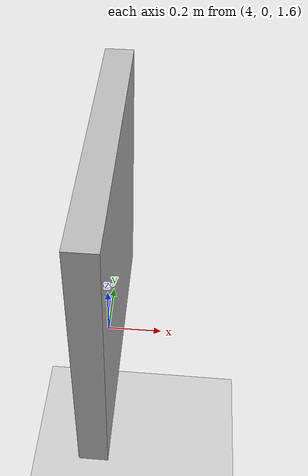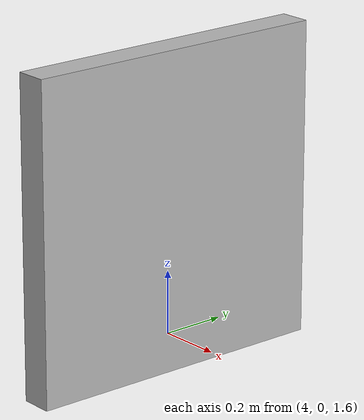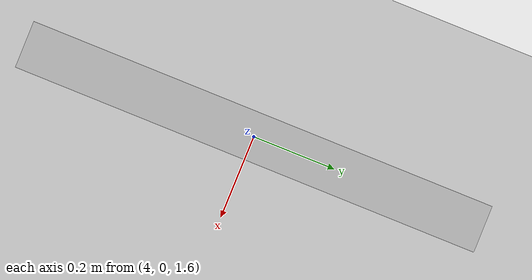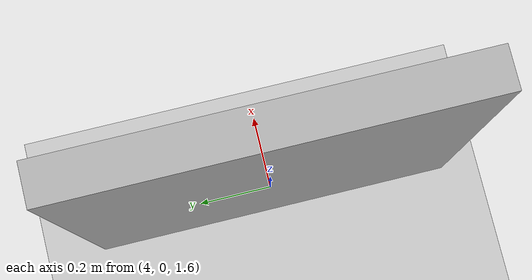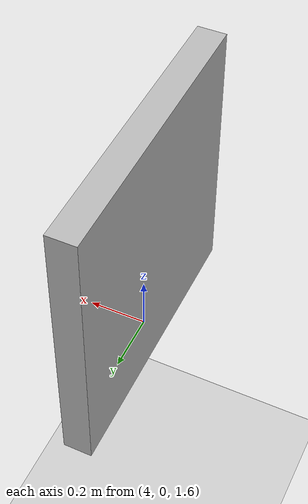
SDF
<sdf version="1.7">
 <world name="default">
  <plugin name="gazebo_ros_state" filename="libgazebo_ros_state.so"><update_rate>30.0</update_rate></plugin>
  <model name="ground_plane">
   <static>1</static>
   <link name="link">
    <collision name="collision">
     <geometry><plane><normal>0 0 1</normal><size>100 100</size></plane></geometry>
     <surface>
      <contact><collide_bitmask>65535</collide_bitmask></contact>
      <friction><ode><mu>100</mu><mu2>50</mu2></ode></friction>
     </surface>
    </collision>
    <visual name="visual">
     <cast_shadows>0</cast_shadows>
     <geometry><plane><normal>0 0 1</normal><size>100 100</size></plane></geometry>
     <material>
      <script><uri>file://media/materials/scripts/gazebo.material</uri><name>Gazebo/Grey</name></script>
     </material>
    </visual>
   </link>
  </model>
  <gravity>0 0 0</gravity>
  <magnetic_field>6e-06 2.3e-05 -4.2e-05</magnetic_field>
  <atmosphere type="adiabatic"/>
  <physics type="ode">
   <max_step_size>0.001</max_step_size>
   <real_time_factor>1</real_time_factor>
   <real_time_update_rate>1000</real_time_update_rate>
  </physics>
  <scene><ambient>0.4 0.4 0.4 1</ambient><background>0.7 0.7 0.7 1</background><shadows>1</shadows></scene>
  <spherical_coordinates>
   <surface_model>EARTH_WGS84</surface_model>
   <latitude_deg>0</latitude_deg>
   <longitude_deg>0</longitude_deg>
   <elevation>0</elevation>
   <heading_deg>0</heading_deg>
  </spherical_coordinates>
  <model name="chessboard">
   <pose>4 0 2 0 -0 1.571</pose>
   <static>0</static>
   <link name="board">
    <gravity>0</gravity>
    <inertial>
     <mass>1</mass>
     <inertia><ixx>0.08383</ixx><ixy>0</ixy><ixz>0</ixz><iyy>0.166</iyy><iyz>0</iyz><izz>0.08383</izz></inertia>
    </inertial>
    <collision name="collision"><geometry><box><size>1 0.1 1</size></box></geometry></collision>
    <visual name="visual">
     <geometry><mesh><uri>/home/frank20a/dev-ws/data/models/chessboard/chessboard.dae</uri></mesh></geometry>
    </visual>
   </link>
  </model>
  <light name="light1" type="point">
   <pose>-5.74255 -0.427307 1 0 -0 0</pose>
   <diffuse>0.5 0.5 0.5 1</diffuse>
   <specular>0.1 0.1 0.1 1</specular>
   <attenuation>
    <range>150</range>
    <constant>-1</constant>
    <linear>0.01</linear>
    <quadratic>0.001</quadratic>
   </attenuation>
   <cast_shadows>0</cast_shadows>
   <direction>0 0 -1</direction>
   <spot><inner_angle>0</inner_angle><outer_angle>0</outer_angle><falloff>0</falloff></spot>
  </light>
  <light name="light2" type="point">
   <pose>0.004052 8.09314 10 0 -0 0</pose>
   <diffuse>0.498039 0.498039 0.498039 1</diffuse>
   <specular>0.0980392 0.0980392 0.0980392 1</specular>
   <direction>0 0 -1</direction>
   <attenuation>
    <range>150</range>
    <constant>-1</constant>
    <linear>0.01</linear>
    <quadratic>0.001</quadratic>
   </attenuation>
   <cast_shadows>0</cast_shadows>
   <spot><inner_angle>0</inner_angle><outer_angle>0</outer_angle><falloff>0</falloff></spot>
  </light>
  <light name="light3" type="point">
   <pose>0.239835 -8.57674 10 0 -0 0</pose>
   <diffuse>0.498039 0.498039 0.498039 1</diffuse>
   <specular>0.0980392 0.0980392 0.0980392 1</specular>
   <direction>0 0 -1</direction>
   <attenuation>
    <range>150</range>
    <constant>-1</constant>
    <linear>0.01</linear>
    <quadratic>0.001</quadratic>
   </attenuation>
   <cast_shadows>0</cast_shadows>
   <spot><inner_angle>0</inner_angle><outer_angle>0</outer_angle><falloff>0</falloff></spot>
  </light>
  <light name="light4" type="point">
   <pose>15.0737 1.15966 10 0 -0 0</pose>
   <diffuse>0.498039 0.498039 0.498039 1</diffuse>
   <specular>0.0980392 0.0980392 0.0980392 1</specular>
   <direction>0 0 -1</direction>
   <attenuation>
    <range>150</range>
    <constant>-1</constant>
    <linear>0.01</linear>
    <quadratic>0.001</quadratic>
   </attenuation>
   <cast_shadows>0</cast_shadows>
   <spot><inner_angle>0</inner_angle><outer_angle>0</outer_angle><falloff>0</falloff></spot>
  </light>
 </world>
</sdf>
